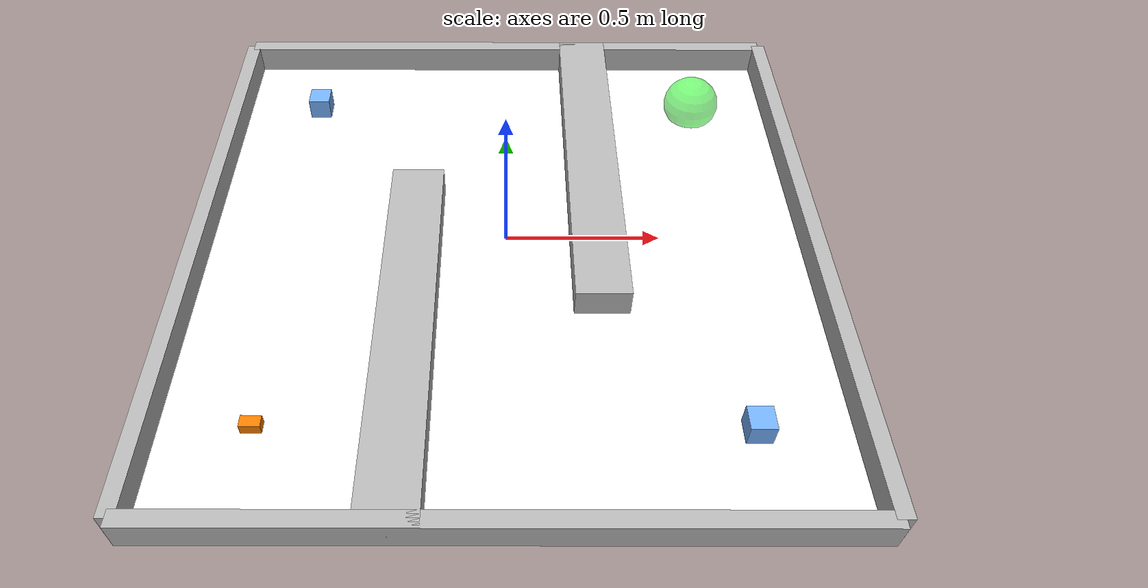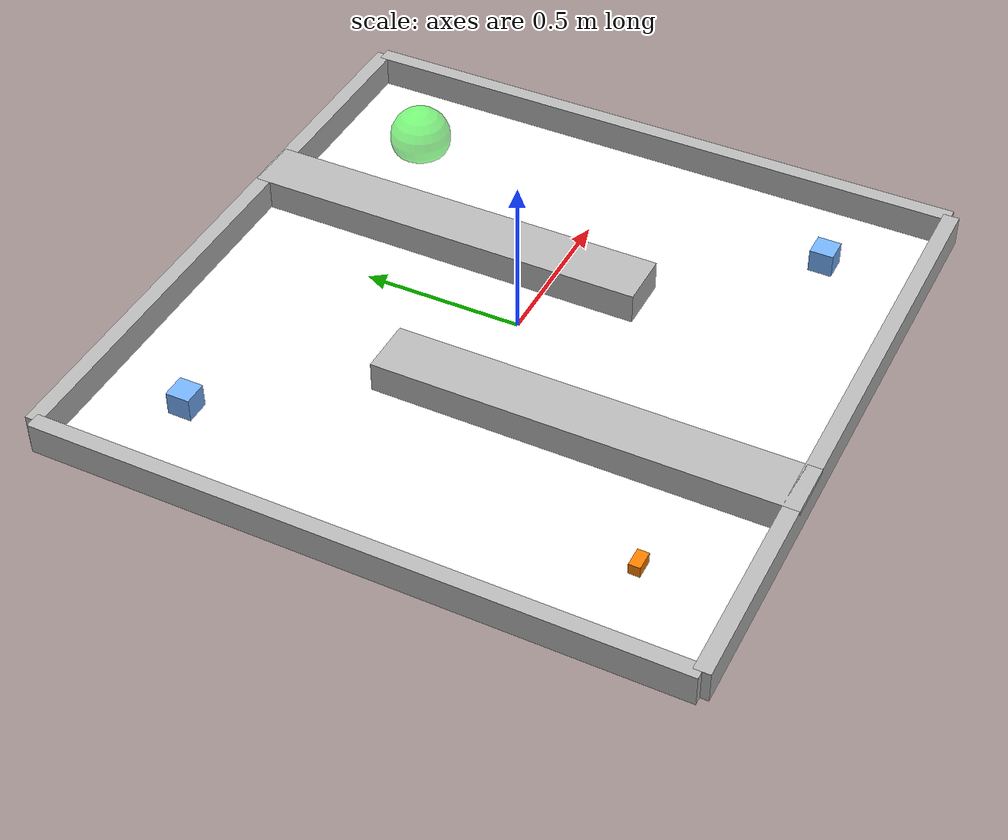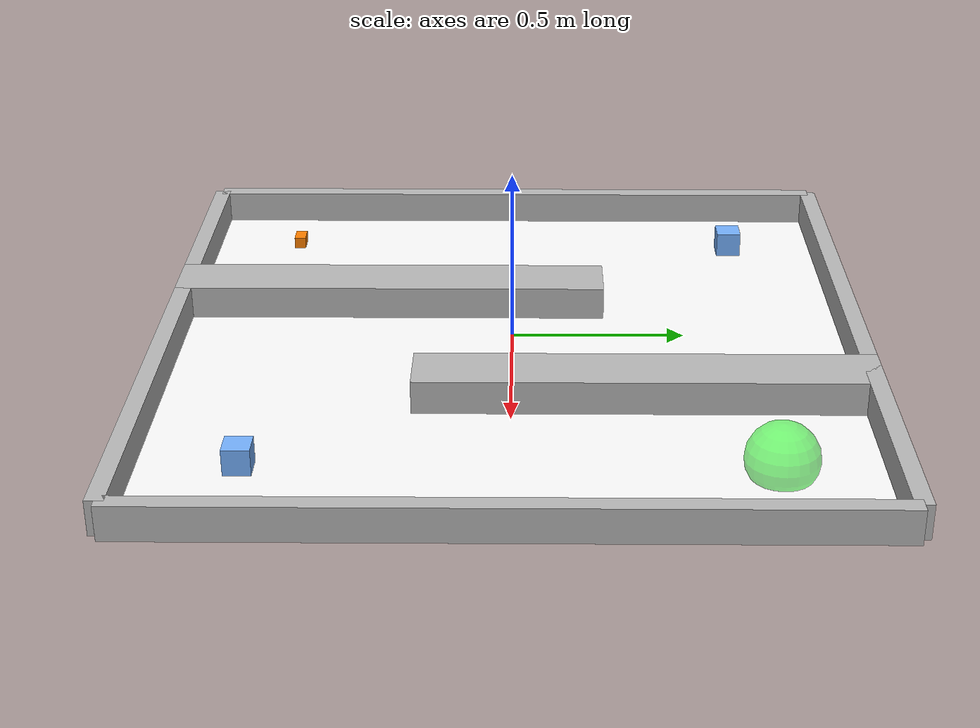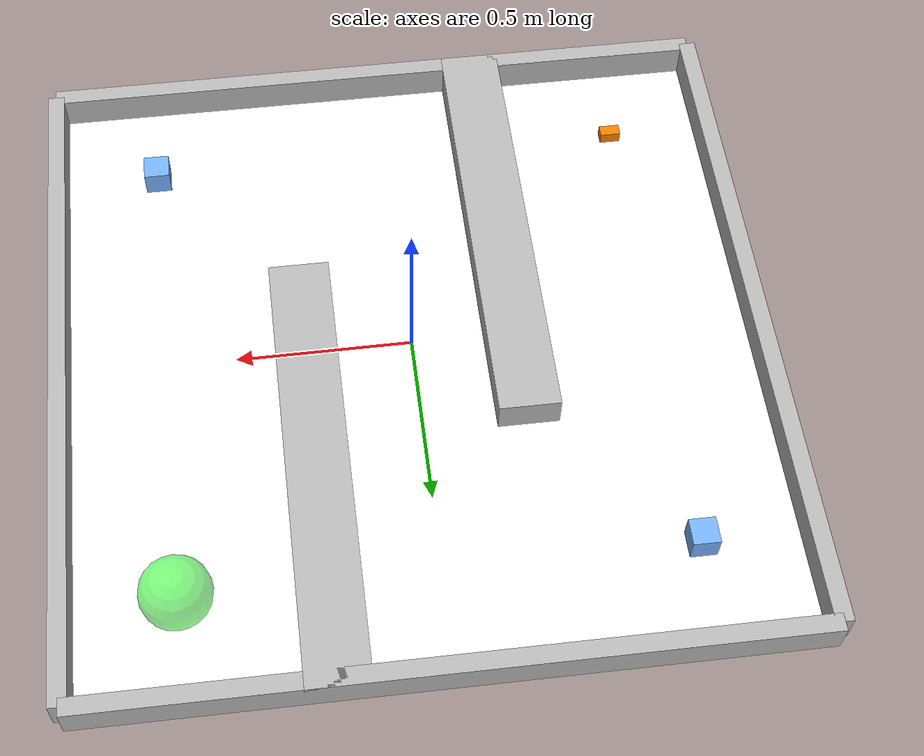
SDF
<?xml version='1.0'?>
<sdf version='1.6'>
  <world name='maze_environment'>
    <model name='GoalArea'>
      <pose frame=''>0.7 0.7 0 0 -0 0</pose>
      <static>1</static>
      <link name='chassis'>
        <visual name='GoalArea_visual'>
          <pose frame=''>0 0 0 0 -0 0</pose>
          <geometry>
            <sphere>
              <radius>0.1</radius>
            </sphere>
          </geometry>
          <material>
            <script>
              <uri>file://media/materials/scripts/gazebo.material</uri>
              <name>Gazebo/Grey</name>
            </script>
            <ambient>0 1 0 0.5</ambient>
          </material>
        </visual>
        <self_collide>0</self_collide>
        <kinematic>0</kinematic>
      </link>
    </model>
    <gravity>0 0 -9.8</gravity>
    <magnetic_field>6e-06 2.3e-05 -4.2e-05</magnetic_field>
    <atmosphere type='adiabatic'/>
    <physics name='default_physics' default='0' type='ode'>
      <max_step_size>0.001</max_step_size>
      <real_time_factor>1</real_time_factor>
      <real_time_update_rate>1000</real_time_update_rate>
    </physics>
    <scene>
      <ambient>0.4 0.4 0.4 1</ambient>
      <background>0.7 0.7 0.7 1</background>
      <shadows>1</shadows>
    </scene>

    <model name="foor">
      <pose frame=''>0 0 -0.05 0 0 0</pose>
      <static>1</static>
      <link name="foorlink">
      <visual name="foorvisual">
        <geometry>
          <box>
            <size>2 2 0.005</size>
          </box>
        </geometry>
        <material>
            <ambient>1 1 1 1.0</ambient>
          </material>
      </visual>
      <collision name="foorcollision">
        <geometry>
          <box>
            <size>2 2 0.005</size>
          </box>
        </geometry>
      </collision>
    </link>
  </model>

<model name="border1">
  <pose frame=''>0 -1 0.000000 -0.000000 0.000000 -0.000000</pose>
  <static>1</static>
  <link name="bolder1_link">
    <collision name='border1_collision'>
      <geometry>
        <box>
          <size>2.0 0.050000 0.100000 </size>
        </box>
      </geometry>
    </collision>
    <visual name='border1_visual'>
      <geometry>
        <box>
          <size>2.0 0.050000 0.100000 </size>
        </box>
      </geometry>
    </visual>
  </link>
</model>

<model name="border2">
  <pose frame=''>0 1 0.000000 -0.000000 0.000000 -0.000000</pose>
  <static>1</static>
  <link name="border2_link">
    <collision name='border2_collision'>
      <geometry>
        <box>
          <size>2.0 0.050000 0.100000 </size>
        </box>
      </geometry>
    </collision>
    <visual name='border2_visual'>
      <geometry>
        <box>
          <size>2.0 0.050000 0.100000 </size>
        </box>
      </geometry>
    </visual>
  </link>
</model>

<model name="border3">
  <pose frame=''>-1 0 0.000000 -0.000000 0.000000 -0.000000</pose>
  <static>1</static>
  <link name="border3_link">
    <collision name='border3_collision'>
      <geometry>
        <box>
          <size>0.05 2.0 0.100000 </size>
        </box>
      </geometry>
    </collision>
    <visual name='border3_visual'>
      <geometry>
        <box>
          <size>0.05 2.0 0.100000 </size>
        </box>
      </geometry>
    </visual>
  </link>
</model>

<model name="border4">
  <pose frame=''>1 0 0.000000 -0.000000 0.000000 -0.000000</pose>
  <static>1</static>
  <link name="border4_link">
    <collision name='border4_collision'>
      <geometry>
        <box>
          <size>0.05 2.0 0.100000 </size>
        </box>
      </geometry>
    </collision>
    <visual name='border4_visual'>
      <geometry>
        <box>
          <size>0.05 2.0 0.100000 </size>
        </box>
      </geometry>
    </visual>
  </link>
</model>

<model name="maze1">
  <pose frame=''>0.3 0.375 0.000000 -0.000000 0.000000 -0.000000</pose>
  <static>1</static>
  <link name="maze1_link">
    <collision name='maze1_collision'>
      <geometry>
        <box>
          <size>0.175 1.3 0.100000 </size>
        </box>
      </geometry>
    </collision>
    <visual name='maze1_visual'>
      <geometry>
        <box>
          <size>0.175 1.3 0.100000 </size>
        </box>
      </geometry>
    </visual>
  </link>
</model>

<model name="maze2">
  <pose frame=''>-0.3 -0.375 0.000000 -0.000000 0.000000 -0.000000</pose>
  <static>1</static>
  <link name="maze2_link">
    <collision name='maze2_collision'>
      <geometry>
        <box>
          <size>0.175 1.3 0.100000 </size>
        </box>
      </geometry>
    </collision>
    <visual name='maze2_visual'>
      <geometry>
        <box>
          <size>0.175 1.3 0.100000 </size>
        </box>
      </geometry>
    </visual>
  </link>
</model>

<model name="beacon1">
  <pose frame=''>-0.7 0.7 0.000000 -0.000000 0.000000 -0.000000</pose>
  <static>1</static>
  <link name="beacon1_link">
    <visual name='beacon1_visual'>
      <geometry>
        <box>
          <size>0.075 0.075 0.075</size>
        </box>
      </geometry>
      <material>
        <ambient>0.46274509803921568627 0.6980392156862745098 1 1.0</ambient>
      </material>
    </visual>
  </link>
</model>

<model name="beacon2">
  <pose frame=''>0.7 -0.7 0.000000 -0.000000 0.000000 -0.000000</pose>
  <static>1</static>
  <link name="beacon2_link">
    <visual name='beacon2_visual'>
      <geometry>
        <box>
          <size>0.075 0.075 0.075</size>
        </box>
      </geometry>
      <material>
        <ambient>0.46274509803921568627 0.6980392156862745098 1 1.0</ambient>
      </material>
    </visual>
  </link>
</model>

  <include>
    <pose>-0.7 -0.7 0.0 0 0 0</pose>
    <uri>model://Dubin</uri>
  </include>

<light name='user_point_light_0' type='point'>
      <pose frame=''>-1.75276 -1.33719 1 0 -0 0</pose>
      <diffuse>0.5 0.5 0.5 1</diffuse>
      <specular>0.1 0.1 0.1 1</specular>
      <attenuation>
        <range>20</range>
        <constant>0.5</constant>
        <linear>0.01</linear>
        <quadratic>0.001</quadratic>
      </attenuation>
      <cast_shadows>0</cast_shadows>
      <direction>0 0 -1</direction>
    </light>
</world>
</sdf>

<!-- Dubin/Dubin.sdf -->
<sdf version='1.6'>
  <model name='Dubin'>
    <link name="DubinLink">
      <pose frame=''>0 0 0 0 0 0</pose>
      <inertial>
        <pose frame='DubinLink'>0 0 0 0 0 0</pose>
        <mass>1.0</mass>
        <inertia>
          <ixx>0.005</ixx>
          <ixy>0.</ixy>
          <ixz>0.0</ixz>
          <iyy>0.006</iyy>
          <izz>0.003</izz>
        </inertia>
      </inertial>
      <collision name='DubinLink_collision'>
        <pose frame=''>0 0 0 0 0 0</pose>
        <geometry>
          <box>
            <size>0.06 0.035 0.035</size>
          </box>
        </geometry>
      </collision>
      <visual name='DubinLink_visual'>
        <pose frame=''>0 0 0 0 0 0</pose>
        <geometry>
          <box>
            <size>0.06 0.035 0.035</size>
          </box>
        </geometry>
        <material>
          <ambient>1.0 0.5019607843137254902 0 1.0</ambient>
        </material>
      </visual>
      <gravity>0</gravity>
      <self_collide>0</self_collide>
    </link>
  </model>
</sdf>
